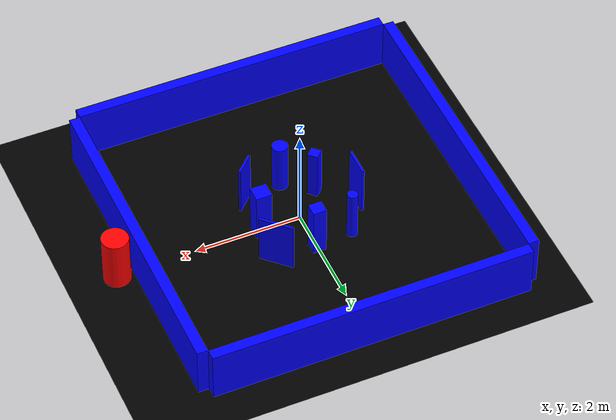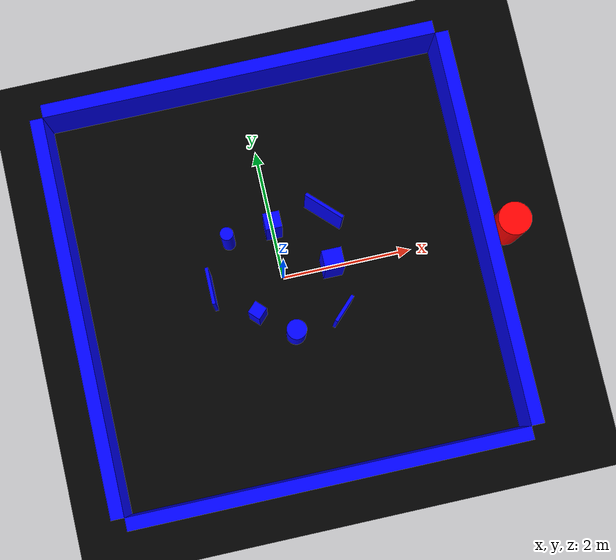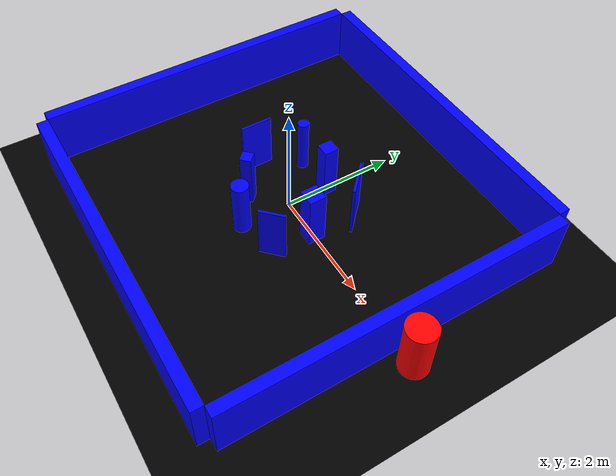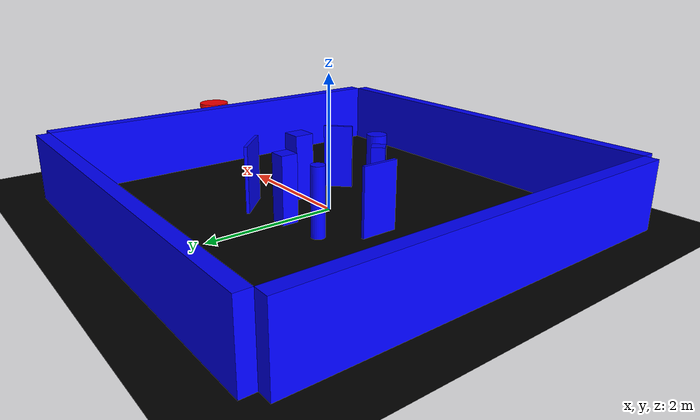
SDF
<sdf version='1.12'>
  <world name='empty'>
    <physics name='1ms' type='ignored'>
      <max_step_size>0.010</max_step_size>
      <real_time_factor>10</real_time_factor>
      <real_time_update_rate>1000</real_time_update_rate>
    </physics>
    <plugin name='gz::sim::systems::Physics' filename='gz-sim-physics-system'/>
    <plugin name='gz::sim::systems::UserCommands' filename='gz-sim-user-commands-system'/>
    <plugin name='gz::sim::systems::SceneBroadcaster' filename='gz-sim-scene-broadcaster-system'/>
    <plugin name='gz::sim::systems::Contact' filename='gz-sim-contact-system'/>
    <gravity>0 0 -9.8000000000000007</gravity>
    <magnetic_field>5.5644999999999998e-06 2.2875799999999999e-05 -4.2388400000000002e-05</magnetic_field>
    <atmosphere type='adiabatic'/>
    <scene>
      <ambient>0.400000006 0.400000006 0.400000006 1</ambient>
      <background>0.699999988 0.699999988 0.699999988 1</background>
      <shadows>true</shadows>
      <grid>false</grid>
    </scene>
    <model name='ground_plane'>
      <static>true</static>
      <link name='link'>
        <collision name='collision'>
          <geometry>
            <plane>
              <normal>0 0 1</normal>
              <size>100 100</size>
            </plane>
          </geometry>
          <surface>
            <friction>
              <ode/>
            </friction>
            <bounce/>
            <contact/>
          </surface>
        </collision>
        <visual name='visual'>
          <geometry>
            <plane>
              <normal>0 0 1</normal>
              <size>100 100</size>
            </plane>
          </geometry>
          <material>
            <ambient>0 0 0 1</ambient>
            <diffuse>0 0 0 1</diffuse>
            <specular>0 0 0 1</specular>
          </material>
        </visual>
        <pose>0 0 0 0 0 0</pose>
        <inertial>
          <pose>0 0 0 0 0 0</pose>
          <mass>1</mass>
          <inertia>
            <ixx>1</ixx>
            <ixy>0</ixy>
            <ixz>0</ixz>
            <iyy>1</iyy>
            <iyz>0</iyz>
            <izz>1</izz>
          </inertia>
        </inertial>
        <enable_wind>false</enable_wind>
      </link>
      <pose>0 0 0 0 0 0</pose>
      <self_collide>false</self_collide>
    </model>
  <model name='square_0'>
    <plugin filename="gz-sim-touchplugin-system"            name="gz::sim::systems::TouchPlugin">        <target>turtlebot3_burger</target>        <namespace>obstacle</namespace>        <time>0.001</time>        <enabled>true</enabled>    </plugin>    <pose>0.75 0.0 0.5 0.0 0.0 0.0</pose>
    <link name='box_link'>
      <sensor name='sensor_contact' type='contact'>          <contact>              <collision>box_collision</collision>          </contact>      </sensor>      <inertial>
        <inertia>
          <ixx>10.9</ixx>
          <ixy>0</ixy>
          <ixz>0</ixz>
          <iyy>10.9</iyy>
          <iyz>0</iyz>
          <izz>1.7999999999999998</izz>
        </inertia>
        <mass>120</mass>
        <pose>0 0 0 0 0 0</pose>
      </inertial>
      <collision name='box_collision'>
        <geometry>
          <box>
            <size>0.3 0.3 1.0</size>
          </box>
        </geometry>
        <surface>
          <friction>
            <ode/>
          </friction>
          <bounce/>
          <contact/>
        </surface>
      </collision>
      <visual name='box_visual'>
        <geometry>
          <box>
            <size>0.3 0.3 1.0</size>
          </box>
        </geometry>
        <material>
            <ambient>0 0 1 1</ambient>
            <diffuse>0 0 1 1</diffuse>
            <specular>0 0 1 1</specular>
        </material>
      </visual>
      <pose>0 0 0 0 0 0</pose>
      <enable_wind>false</enable_wind>
    </link>
    <static>false</static>
    <self_collide>false</self_collide>
  </model>
  <model name='square_1'>
    <plugin filename="gz-sim-touchplugin-system"            name="gz::sim::systems::TouchPlugin">        <target>turtlebot3_burger</target>        <namespace>obstacle</namespace>        <time>0.001</time>        <enabled>true</enabled>    </plugin>    <pose>-0.5 -0.5 0.5 0.0 0.0 0.78</pose>
    <link name='box_link'>
      <sensor name='sensor_contact' type='contact'>          <contact>              <collision>box_collision</collision>          </contact>      </sensor>      <inertial>
        <inertia>
          <ixx>10.4</ixx>
          <ixy>0</ixy>
          <ixz>0</ixz>
          <iyy>10.4</iyy>
          <iyz>0</iyz>
          <izz>0.8000000000000002</izz>
        </inertia>
        <mass>120</mass>
        <pose>0 0 0 0 0 0</pose>
      </inertial>
      <collision name='box_collision'>
        <geometry>
          <box>
            <size>0.2 0.2 1.0</size>
          </box>
        </geometry>
        <surface>
          <friction>
            <ode/>
          </friction>
          <bounce/>
          <contact/>
        </surface>
      </collision>
      <visual name='box_visual'>
        <geometry>
          <box>
            <size>0.2 0.2 1.0</size>
          </box>
        </geometry>
        <material>
            <ambient>0 0 1 1</ambient>
            <diffuse>0 0 1 1</diffuse>
            <specular>0 0 1 1</specular>
        </material>
      </visual>
      <pose>0 0 0 0 0 0</pose>
      <enable_wind>false</enable_wind>
    </link>
    <static>false</static>
    <self_collide>false</self_collide>
  </model>
  <model name='square_2'>
    <plugin filename="gz-sim-touchplugin-system"            name="gz::sim::systems::TouchPlugin">        <target>turtlebot3_burger</target>        <namespace>obstacle</namespace>        <time>0.001</time>        <enabled>true</enabled>    </plugin>    <pose>0.0 0.75 0.5 0.0 0.0 0.0</pose>
    <link name='box_link'>
      <sensor name='sensor_contact' type='contact'>          <contact>              <collision>box_collision</collision>          </contact>      </sensor>      <inertial>
        <inertia>
          <ixx>10.625</ixx>
          <ixy>0</ixy>
          <ixz>0</ixz>
          <iyy>10.625</iyy>
          <iyz>0</iyz>
          <izz>1.25</izz>
        </inertia>
        <mass>120</mass>
        <pose>0 0 0 0 0 0</pose>
      </inertial>
      <collision name='box_collision'>
        <geometry>
          <box>
            <size>0.25 0.25 1.0</size>
          </box>
        </geometry>
        <surface>
          <friction>
            <ode/>
          </friction>
          <bounce/>
          <contact/>
        </surface>
      </collision>
      <visual name='box_visual'>
        <geometry>
          <box>
            <size>0.25 0.25 1.0</size>
          </box>
        </geometry>
        <material>
            <ambient>0 0 1 1</ambient>
            <diffuse>0 0 1 1</diffuse>
            <specular>0 0 1 1</specular>
        </material>
      </visual>
      <pose>0 0 0 0 0 0</pose>
      <enable_wind>false</enable_wind>
    </link>
    <static>false</static>
    <self_collide>false</self_collide>
  </model>
  <model name='rectangle_0'>
    <plugin filename="gz-sim-touchplugin-system"            name="gz::sim::systems::TouchPlugin">        <target>turtlebot3_burger</target>        <namespace>obstacle</namespace>        <time>0.001</time>        <enabled>true</enabled>    </plugin>    <pose>0.75 -0.75 0.5 0.0 0.0 0.78</pose>
    <link name='box_link'>
      <sensor name='sensor_contact' type='contact'>          <contact>              <collision>box_collision</collision>          </contact>      </sensor>      <inertial>
        <inertia>
          <ixx>10.024999999999999</ixx>
          <ixy>0</ixy>
          <ixz>0</ixz>
          <iyy>12.025000000000002</iyy>
          <iyz>0</iyz>
          <izz>2.0500000000000003</izz>
        </inertia>
        <mass>120</mass>
        <pose>0 0 0 0 0 0</pose>
      </inertial>
      <collision name='box_collision'>
        <geometry>
          <box>
            <size>0.45 0.05 1.0</size>
          </box>
        </geometry>
        <surface>
          <friction>
            <ode/>
          </friction>
          <bounce/>
          <contact/>
        </surface>
      </collision>
      <visual name='box_visual'>
        <geometry>
          <box>
            <size>0.45 0.05 1.0</size>
          </box>
        </geometry>
        <material>
            <ambient>0 0 1 1</ambient>
            <diffuse>0 0 1 1</diffuse>
            <specular>0 0 1 1</specular>
        </material>
      </visual>
      <pose>0 0 0 0 0 0</pose>
      <enable_wind>false</enable_wind>
    </link>
    <static>false</static>
    <self_collide>false</self_collide>
  </model>
  <model name='rectangle_1'>
    <plugin filename="gz-sim-touchplugin-system"            name="gz::sim::systems::TouchPlugin">        <target>turtlebot3_burger</target>        <namespace>obstacle</namespace>        <time>0.001</time>        <enabled>true</enabled>    </plugin>    <pose>-1.1 0.0 0.5 0.0 0.0 1.57</pose>
    <link name='box_link'>
      <sensor name='sensor_contact' type='contact'>          <contact>              <collision>box_collision</collision>          </contact>      </sensor>      <inertial>
        <inertia>
          <ixx>10.024999999999999</ixx>
          <ixy>0</ixy>
          <ixz>0</ixz>
          <iyy>13.025</iyy>
          <iyz>0</iyz>
          <izz>3.0500000000000007</izz>
        </inertia>
        <mass>120</mass>
        <pose>0 0 0 0 0 0</pose>
      </inertial>
      <collision name='box_collision'>
        <geometry>
          <box>
            <size>0.55 0.05 1.0</size>
          </box>
        </geometry>
        <surface>
          <friction>
            <ode/>
          </friction>
          <bounce/>
          <contact/>
        </surface>
      </collision>
      <visual name='box_visual'>
        <geometry>
          <box>
            <size>0.55 0.05 1.0</size>
          </box>
        </geometry>
        <material>
            <ambient>0 0 1 1</ambient>
            <diffuse>0 0 1 1</diffuse>
            <specular>0 0 1 1</specular>
        </material>
      </visual>
      <pose>0 0 0 0 0 0</pose>
      <enable_wind>false</enable_wind>
    </link>
    <static>false</static>
    <self_collide>false</self_collide>
  </model>
  <model name='rectangle_2'>
    <plugin filename="gz-sim-touchplugin-system"            name="gz::sim::systems::TouchPlugin">        <target>turtlebot3_burger</target>        <namespace>obstacle</namespace>        <time>0.001</time>        <enabled>true</enabled>    </plugin>    <pose>0.8 0.8 0.5 0.0 0.0 -0.78</pose>
    <link name='box_link'>
      <sensor name='sensor_contact' type='contact'>          <contact>              <collision>box_collision</collision>          </contact>      </sensor>      <inertial>
        <inertia>
          <ixx>10.024999999999999</ixx>
          <ixy>0</ixy>
          <ixz>0</ixz>
          <iyy>14.225000000000001</iyy>
          <iyz>0</iyz>
          <izz>4.25</izz>
        </inertia>
        <mass>120</mass>
        <pose>0 0 0 0 0 0</pose>
      </inertial>
      <collision name='box_collision'>
        <geometry>
          <box>
            <size>0.65 0.05 1.0</size>
          </box>
        </geometry>
        <surface>
          <friction>
            <ode/>
          </friction>
          <bounce/>
          <contact/>
        </surface>
      </collision>
      <visual name='box_visual'>
        <geometry>
          <box>
            <size>0.65 0.05 1.0</size>
          </box>
        </geometry>
        <material>
            <ambient>0 0 1 1</ambient>
            <diffuse>0 0 1 1</diffuse>
            <specular>0 0 1 1</specular>
        </material>
      </visual>
      <pose>0 0 0 0 0 0</pose>
      <enable_wind>false</enable_wind>
    </link>
    <static>false</static>
    <self_collide>false</self_collide>
  </model>
  <model name='cylinder_0'>
    <plugin filename="gz-sim-touchplugin-system"            name="gz::sim::systems::TouchPlugin">        <target>turtlebot3_burger</target>        <namespace>obstacle</namespace>        <time>0.001</time>        <enabled>true</enabled>    </plugin>    <pose>0.0 -0.9 0.5 0.0 0.0 0.0</pose>
    <link name='cylinder_link'>
      <sensor name='sensor_contact' type='contact'>          <contact>              <collision>cylinder_collision</collision>          </contact>      </sensor>      <inertial>
        <inertia>
          <ixx>10.674999999999999</ixx>
          <ixy>0</ixy>
          <ixz>0</ixz>
          <iyy>10.674999999999999</iyy>
          <iyz>0</iyz>
          <izz>1.3499999999999999</izz>
        </inertia>
        <mass>120</mass>
        <pose>0 0 0 0 0 0</pose>
      </inertial>
      <collision name='cylinder_collision'>
        <geometry>
          <cylinder>
            <radius>0.15</radius>
            <length>1.0</length>
          </cylinder>
        </geometry>
        <surface>
          <friction>
            <ode/>
          </friction>
          <bounce/>
          <contact/>
        </surface>
      </collision>
      <visual name='cylinder_visual'>
        <geometry>
          <cylinder>
            <radius>0.15</radius>
            <length>1.0</length>
          </cylinder>
        </geometry>
        <material>
            <ambient>0 0 1 1</ambient>
            <diffuse>0 0 1 1</diffuse>
            <specular>0 0 1 1</specular>
        </material>
      </visual>
      <pose>0 0 0 0 0 0</pose>
      <enable_wind>false</enable_wind>
    </link>
    <static>false</static>
    <self_collide>false</self_collide>
  </model>
  <model name='cylinder_1'>
    <plugin filename="gz-sim-touchplugin-system"            name="gz::sim::systems::TouchPlugin">        <target>turtlebot3_burger</target>        <namespace>obstacle</namespace>        <time>0.001</time>        <enabled>true</enabled>    </plugin>    <pose>-0.7 0.7 0.5 0.0 0.0 0.0</pose>
    <link name='cylinder_link'>
      <sensor name='sensor_contact' type='contact'>          <contact>              <collision>cylinder_collision</collision>          </contact>      </sensor>      <inertial>
        <inertia>
          <ixx>10.3</ixx>
          <ixy>0</ixy>
          <ixz>0</ixz>
          <iyy>10.3</iyy>
          <iyz>0</iyz>
          <izz>0.6000000000000001</izz>
        </inertia>
        <mass>120</mass>
        <pose>0 0 0 0 0 0</pose>
      </inertial>
      <collision name='cylinder_collision'>
        <geometry>
          <cylinder>
            <radius>0.1</radius>
            <length>1.0</length>
          </cylinder>
        </geometry>
        <surface>
          <friction>
            <ode/>
          </friction>
          <bounce/>
          <contact/>
        </surface>
      </collision>
      <visual name='cylinder_visual'>
        <geometry>
          <cylinder>
            <radius>0.1</radius>
            <length>1.0</length>
          </cylinder>
        </geometry>
        <material>
            <ambient>0 0 1 1</ambient>
            <diffuse>0 0 1 1</diffuse>
            <specular>0 0 1 1</specular>
        </material>
      </visual>
      <pose>0 0 0 0 0 0</pose>
      <enable_wind>false</enable_wind>
    </link>
    <static>false</static>
    <self_collide>false</self_collide>
  </model>
    <model name='fence_1'>
      <plugin filename="gz-sim-touchplugin-system"
              name="gz::sim::systems::TouchPlugin">
          <target>turtlebot3_burger</target>
          <namespace>fence</namespace>
          <time>0.001</time>
          <enabled>true</enabled>
      </plugin>
      <pose>-3.1 -1.0994676924413233e-07 0.49999932681900072 -1.9602143549339623e-08 -2.4822068816099727e-09 4.907735144525877e-08</pose>
      <link name='box_link'>
        <sensor name='sensor_contact' type='contact'>
            <contact>
                <collision>box_collision</collision>
            </contact>
        </sensor>
        <inertial>
          <inertia>
            <ixx>16.666</ixx>
            <ixy>0</ixy>
            <ixz>0</ixz>
            <iyy>16.666</iyy>
            <iyz>0</iyz>
            <izz>16.666</izz>
          </inertia>
          <mass>100</mass>
          <pose>0 0 0 0 0 0</pose>
        </inertial>
        <collision name='box_collision'>
          <geometry>
            <box>
              <size>0.2 6 1</size>
            </box>
          </geometry>
          <surface>
            <friction>
              <ode/>
            </friction>
            <bounce/>
            <contact/>
          </surface>
        </collision>
        <visual name='box_visual'>
          <geometry>
            <box>
              <size>0.2 6 1</size>
            </box>
          </geometry>
          <material>
            <ambient>0 0 1 1</ambient>
            <diffuse>0 0 1 1</diffuse>
            <specular>0 0 1 1</specular>
          </material>
        </visual>
        <pose>0 0 0 0 0 0</pose>
        <enable_wind>false</enable_wind>
      </link>
      <static>false</static>
      <self_collide>false</self_collide>
    </model>
    <model name='fence_2'>
      <plugin filename="gz-sim-touchplugin-system"
              name="gz::sim::systems::TouchPlugin">
          <target>turtlebot3_burger</target>
          <namespace>fence</namespace>
          <time>0.001</time>
          <enabled>true</enabled>
      </plugin>
      <pose>3.1 -3.5138676988246148e-07 0.49999914610721918 -4.473583661194936e-08 3.4724102697001128e-10 3.9038962250827841e-08</pose>
      <link name='box_link'>
        <sensor name='sensor_contact' type='contact'>
            <contact>
                <collision>box_collision</collision>
            </contact>
        </sensor>
        <inertial>
          <inertia>
            <ixx>16.666</ixx>
            <ixy>0</ixy>
            <ixz>0</ixz>
            <iyy>16.666</iyy>
            <iyz>0</iyz>
            <izz>16.666</izz>
          </inertia>
          <mass>100</mass>
          <pose>0 0 0 0 0 0</pose>
        </inertial>
        <collision name='box_collision'>
          <geometry>
            <box>
              <size>0.2 6 1</size>
            </box>
          </geometry>
          <surface>
            <friction>
              <ode/>
            </friction>
            <bounce/>
            <contact/>
          </surface>
        </collision>
        <visual name='box_visual'>
          <geometry>
            <box>
              <size>0.2 6 1</size>
            </box>
          </geometry>
          <material>
            <ambient>0 0 1 1</ambient>
            <diffuse>0 0 1 1</diffuse>
            <specular>0 0 1 1</specular>
          </material>
        </visual>
        <pose>0 0 0 0 0 0</pose>
        <enable_wind>false</enable_wind>
      </link>
      <static>false</static>
      <self_collide>false</self_collide>
    </model>
    <model name='fence_3'>
      <plugin filename="gz-sim-touchplugin-system"
              name="gz::sim::systems::TouchPlugin">
          <target>turtlebot3_burger</target>
          <namespace>fence</namespace>
          <time>0.001</time>
          <enabled>true</enabled>
      </plugin>
      <pose>-1.2624896680003741e-07 3.1 0.49999892895764775 -6.8684635263476807e-09 8.8765153466269893e-08 -8.9611825445029425e-09</pose>
      <link name='box_link'>
        <sensor name='sensor_contact' type='contact'>
            <contact>
                <collision>box_collision</collision>
            </contact>
        </sensor>
        <inertial>
          <inertia>
            <ixx>16.666</ixx>
            <ixy>0</ixy>
            <ixz>0</ixz>
            <iyy>16.666</iyy>
            <iyz>0</iyz>
            <izz>16.666</izz>
          </inertia>
          <mass>100</mass>
          <pose>0 0 0 0 0 0</pose>
        </inertial>
        <collision name='box_collision'>
          <geometry>
            <box>
              <size>6 0.2 1</size>
            </box>
          </geometry>
          <surface>
            <friction>
              <ode/>
            </friction>
            <bounce/>
            <contact/>
          </surface>
        </collision>
        <visual name='box_visual'>
          <geometry>
            <box>
              <size>6 0.2 1</size>
            </box>
          </geometry>
          <material>
            <ambient>0 0 1 1</ambient>
            <diffuse>0 0 1 1</diffuse>
            <specular>0 0 1 1</specular>
          </material>
        </visual>
        <pose>0 0 0 0 0 0</pose>
        <enable_wind>false</enable_wind>
      </link>
      <static>false</static>
      <self_collide>false</self_collide>
    </model>
    <model name='fence_4'>
      <plugin filename="gz-sim-touchplugin-system"
              name="gz::sim::systems::TouchPlugin">
          <target>turtlebot3_burger</target>
          <namespace>fence</namespace>
          <time>0.001</time>
          <enabled>true</enabled>
      </plugin>
      <pose>3.1165417824908246e-07 -3.1 0.49999908319707276 -4.6068191654925905e-09 -6.3004293022832624e-08 2.8392683620853e-09</pose>
      <link name='box_link'>
        <sensor name='sensor_contact' type='contact'>
            <contact>
                <collision>box_collision</collision>
            </contact>
        </sensor>
        <inertial>
          <inertia>
            <ixx>16.666</ixx>
            <ixy>0</ixy>
            <ixz>0</ixz>
            <iyy>16.666</iyy>
            <iyz>0</iyz>
            <izz>16.666</izz>
          </inertia>
          <mass>100</mass>
          <pose>0 0 0 0 0 0</pose>
        </inertial>
        <collision name='box_collision'>
          <geometry>
            <box>
              <size>6 0.2 1</size>
            </box>
          </geometry>
          <surface>
            <friction>
              <ode/>
            </friction>
            <bounce/>
            <contact/>
          </surface>
        </collision>
        <visual name='box_visual'>
          <geometry>
            <box>
              <size>6 0.2 1</size>
            </box>
          </geometry>
          <material>
            <ambient>0 0 1 1</ambient>
            <diffuse>0 0 1 1</diffuse>
            <specular>0 0 1 1</specular>
          </material>
        </visual>
        <pose>0 0 0 0 0 0</pose>
        <enable_wind>false</enable_wind>
      </link>
      <static>false</static>
      <self_collide>false</self_collide>
    </model>
    <model name='goal_visual'>
        <pose>3.5 0.0 0.5 0.0 0.0 0.0</pose>
        <link name='cylinder_link'>
        <inertial>
            <inertia>
            <ixx>10.674999999999999</ixx>
            <ixy>0</ixy>
            <ixz>0</ixz>
            <iyy>10.674999999999999</iyy>
            <iyz>0</iyz>
            <izz>1.3499999999999999</izz>
            </inertia>
            <mass>120</mass>
            <pose>0 0 0 0 0 0</pose>
        </inertial>
        <collision name='cylinder_collision'>
            <geometry>
            <cylinder>
                <radius>0.001</radius>
                <length>1.0</length>
            </cylinder>
            </geometry>
            <surface>
            <friction>
                <ode/>
            </friction>
            <bounce/>
            <contact/>
            </surface>
        </collision>
        <visual name='cylinder_visual'>
            <geometry>
            <cylinder>
                <radius>0.25</radius>
                <length>1.0</length>
            </cylinder>
            </geometry>
            <material>
            <ambient>1 0 0 1</ambient>
            <diffuse>1 0 0 1</diffuse>
            <specular>1 0 0 1</specular>
            </material>
        </visual>
        <pose>0 0 0 0 0 0</pose>
        <enable_wind>false</enable_wind>
        </link>
        <static>false</static>
        <self_collide>false</self_collide>
    </model>
    <light name='sun' type='directional'>
      <pose>0 0 10 0 0 0</pose>
      <cast_shadows>true</cast_shadows>
      <intensity>1</intensity>
      <direction>-0.5 0.10000000000000001 -0.90000000000000002</direction>
      <diffuse>0.800000012 0.800000012 0.800000012 1</diffuse>
      <specular>0.200000003 0.200000003 0.200000003 1</specular>
      <attenuation>
        <range>1000</range>
        <linear>0.01</linear>
        <constant>0.90000000000000002</constant>
        <quadratic>0.001</quadratic>
      </attenuation>
      <spot>
        <inner_angle>0</inner_angle>
        <outer_angle>0</outer_angle>
        <falloff>0</falloff>
      </spot>
    </light>
  </world>
</sdf>
